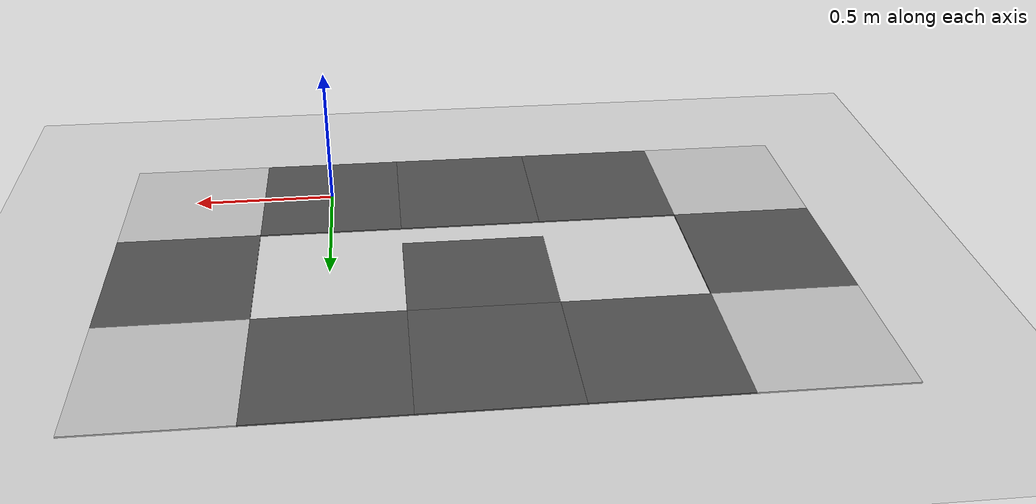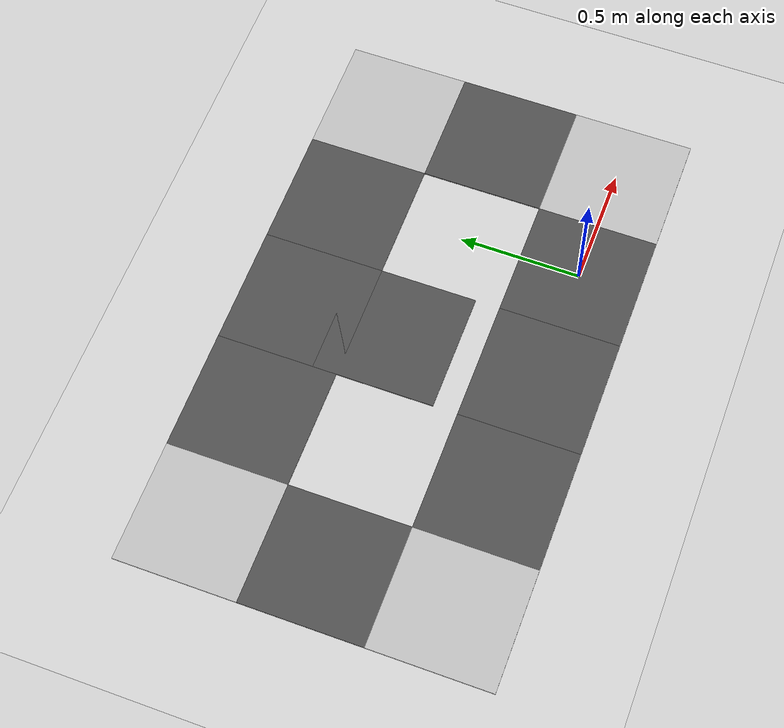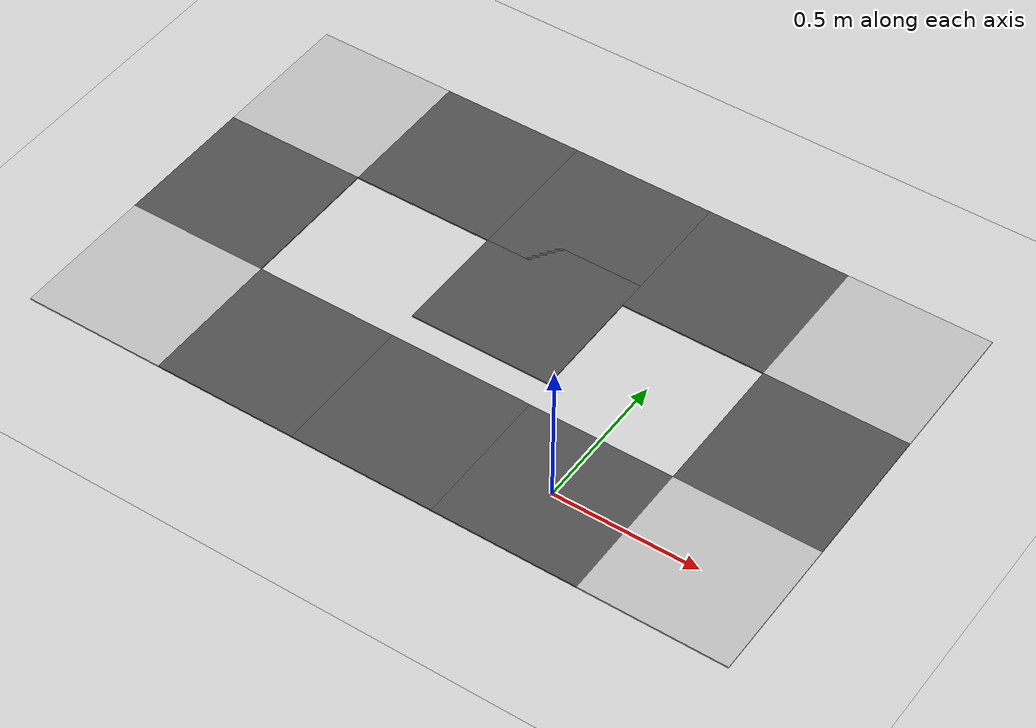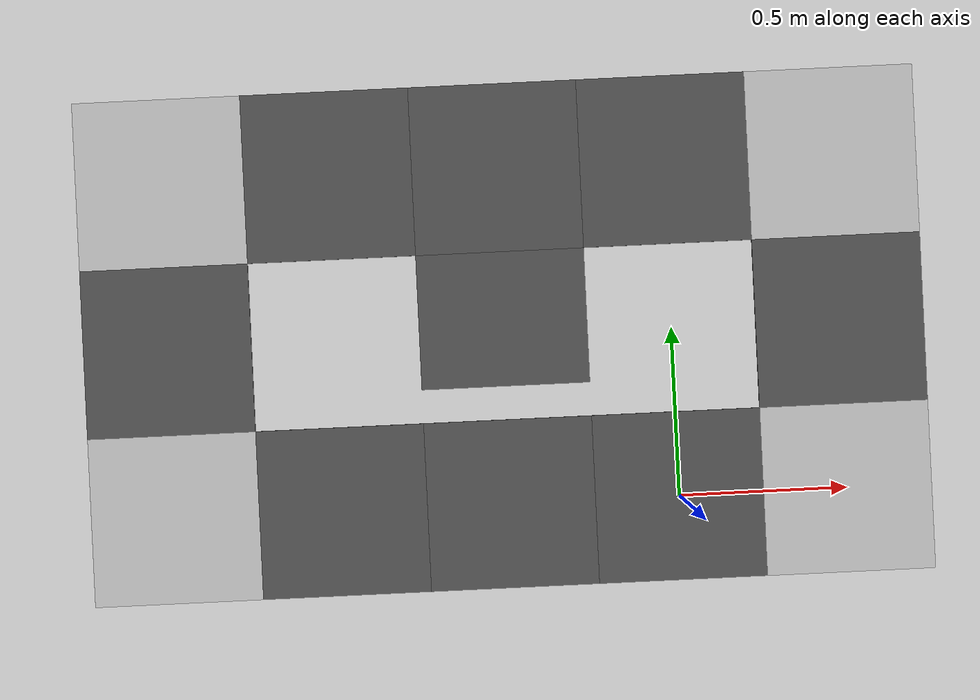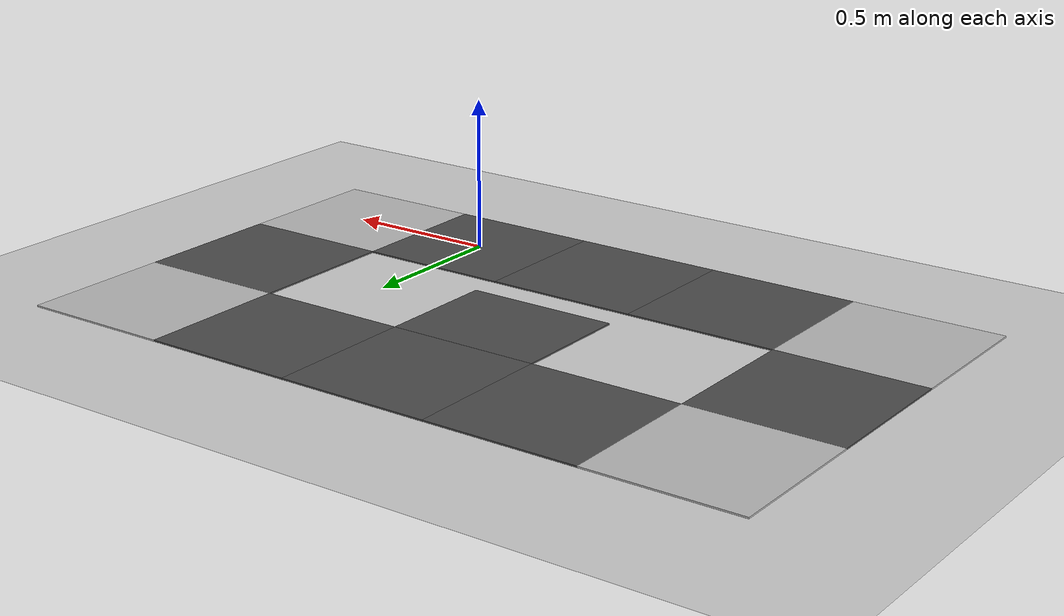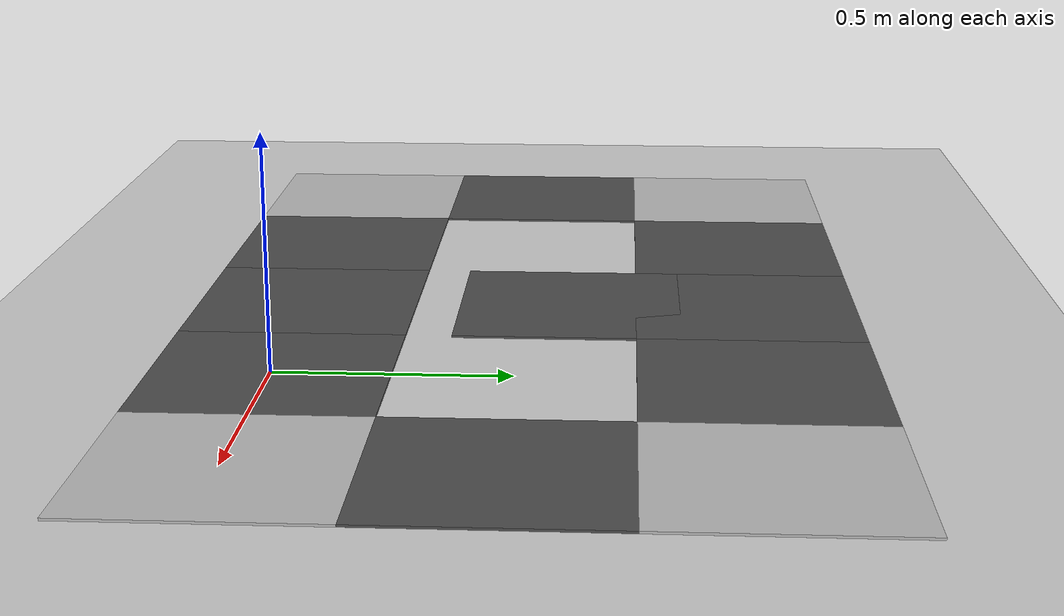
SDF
<sdf version="1.6">
 <world name="default">
  <light name="sun" type="directional">
   <pose>0 0 10 0 -0 0</pose>
   <diffuse>0.8 0.8 0.8 1</diffuse>
   <specular>0.2 0.2 0.2 1</specular>
   <attenuation>
    <range>1000</range>
    <constant>0.9</constant>
    <linear>0.01</linear>
    <quadratic>0.001</quadratic>
   </attenuation>
   <direction>-0.5 0.1 -0.9</direction>
  </light>
  <model name="ground_plane">
   <static>1</static>
   <link name="link">
    <collision name="collision">
     <geometry><plane><normal>0 0 1</normal><size>100 100</size></plane></geometry>
     <surface><friction><ode><mu>100</mu><mu2>50</mu2></ode></friction></surface>
    </collision>
    <visual name="visual">
     <cast_shadows>0</cast_shadows>
     <geometry><plane><normal>0 0 1</normal><size>100 100</size></plane></geometry>
     <material>
      <script><uri>file://media/materials/scripts/gazebo.material</uri><name>Gazebo/Grey</name></script>
     </material>
    </visual>
   </link>
  </model>
  <physics name="default_physics" default="0" type="ode">
   <max_step_size>0.001</max_step_size>
   <real_time_factor>1</real_time_factor>
   <real_time_update_rate>1000</real_time_update_rate>
  </physics>
  <scene><ambient>0.4 0.4 0.4 1</ambient><background>0.7 0.7 0.7 1</background><shadows>1</shadows></scene>
  <spherical_coordinates>
   <surface_model>EARTH_WGS84</surface_model>
   <latitude_deg>0</latitude_deg>
   <longitude_deg>0</longitude_deg>
   <elevation>0</elevation>
   <heading_deg>0</heading_deg>
  </spherical_coordinates>
  <light name="user_spot_light_1" type="spot">
   <pose>-11 7 1 0 -0 0</pose>
   <diffuse>0.5 0.5 0.5 1</diffuse>
   <specular>0.1 0.1 0.1 1</specular>
   <direction>0 0 -1</direction>
   <attenuation>
    <range>20</range>
    <constant>0.5</constant>
    <linear>0.01</linear>
    <quadratic>0.001</quadratic>
   </attenuation>
   <cast_shadows>0</cast_shadows>
   <spot><inner_angle>0.6</inner_angle><outer_angle>1</outer_angle><falloff>1</falloff></spot>
  </light>
  <gravity>0 0 -9.8</gravity>
  <magnetic_field>6e-06 2.3e-05 -4.2e-05</magnetic_field>
  <atmosphere type="adiabatic"/>
  <model name="road_plane_3_clone_0">
   <static>1</static>
   <link name="link">
    <collision name="collision"><geometry><box><size>0.5 0.5 0.005</size></box></geometry></collision>
    <visual name="visual">
     <cast_shadows>0</cast_shadows>
     <geometry><box><size>0.5 0.5 0.005</size></box></geometry>
     <material>
      <script>
       <uri>model://road_plane_3/materials/scripts</uri>
       <uri>model://road_plane_3/materials/textures</uri>
       <name>vrc/road3</name>
      </script>
     </material>
    </visual>
   </link>
   <pose>-1 0 0 0 -0 0</pose>
  </model>
  <model name="road_plane_3_clone_1">
   <static>1</static>
   <link name="link">
    <collision name="collision"><geometry><box><size>0.5 0.5 0.005</size></box></geometry></collision>
    <visual name="visual">
     <cast_shadows>0</cast_shadows>
     <geometry><box><size>0.5 0.5 0.005</size></box></geometry>
     <material>
      <script>
       <uri>model://road_plane_3/materials/scripts</uri>
       <uri>model://road_plane_3/materials/textures</uri>
       <name>vrc/road3</name>
      </script>
     </material>
    </visual>
   </link>
   <pose>0.5 0.5 0 0 -0 1.5708</pose>
  </model>
  <model name="road_plane_3_clone">
   <static>1</static>
   <link name="link">
    <collision name="collision"><geometry><box><size>0.5 0.5 0.005</size></box></geometry></collision>
    <visual name="visual">
     <cast_shadows>0</cast_shadows>
     <geometry><box><size>0.5 0.5 0.005</size></box></geometry>
     <material>
      <script>
       <uri>model://road_plane_3/materials/scripts</uri>
       <uri>model://road_plane_3/materials/textures</uri>
       <name>vrc/road3</name>
      </script>
     </material>
    </visual>
   </link>
   <pose>-0.5 0 0 0 -0 0</pose>
  </model>
  <model name="road_diag_clone">
   <static>1</static>
   <link name="link">
    <collision name="collision"><geometry><box><size>0.5 0.5 0.005</size></box></geometry></collision>
    <visual name="visual">
     <cast_shadows>0</cast_shadows>
     <geometry><box><size>0.5 0.5 0.005</size></box></geometry>
     <material>
      <script>
       <uri>model://road_diag/materials/scripts</uri>
       <uri>model://road_diag/materials/textures</uri>
       <name>vrc/diag</name>
      </script>
     </material>
    </visual>
   </link>
   <pose>0.5 1 0 0 -0 1.5708</pose>
  </model>
  <model name="road_plane_3_clone_2">
   <static>1</static>
   <link name="link">
    <collision name="collision"><geometry><box><size>0.5 0.5 0.005</size></box></geometry></collision>
    <visual name="visual">
     <cast_shadows>0</cast_shadows>
     <geometry><box><size>0.5 0.5 0.005</size></box></geometry>
     <material>
      <script>
       <uri>model://road_plane_3/materials/scripts</uri>
       <uri>model://road_plane_3/materials/textures</uri>
       <name>vrc/road3</name>
      </script>
     </material>
    </visual>
   </link>
   <pose>0 1 0 0 -0 0</pose>
  </model>
  <model name="road_plane_3_clone_3">
   <static>1</static>
   <link name="link">
    <collision name="collision"><geometry><box><size>0.5 0.5 0.005</size></box></geometry></collision>
    <visual name="visual">
     <cast_shadows>0</cast_shadows>
     <geometry><box><size>0.5 0.5 0.005</size></box></geometry>
     <material>
      <script>
       <uri>model://road_plane_3/materials/scripts</uri>
       <uri>model://road_plane_3/materials/textures</uri>
       <name>vrc/road3</name>
      </script>
     </material>
    </visual>
   </link>
   <pose>-0.5 1 0 0 -0 0</pose>
  </model>
  <model name="road_plane_3_clone_4">
   <static>1</static>
   <link name="link">
    <collision name="collision"><geometry><box><size>0.5 0.5 0.005</size></box></geometry></collision>
    <visual name="visual">
     <cast_shadows>0</cast_shadows>
     <geometry><box><size>0.5 0.5 0.005</size></box></geometry>
     <material>
      <script>
       <uri>model://road_plane_3/materials/scripts</uri>
       <uri>model://road_plane_3/materials/textures</uri>
       <name>vrc/road3</name>
      </script>
     </material>
    </visual>
   </link>
   <pose>-1 1 0 0 -0 0</pose>
  </model>
  <model name="road_plane_3_clone_1_clone">
   <static>1</static>
   <link name="link">
    <collision name="collision"><geometry><box><size>0.5 0.5 0.005</size></box></geometry></collision>
    <visual name="visual">
     <cast_shadows>0</cast_shadows>
     <geometry><box><size>0.5 0.5 0.005</size></box></geometry>
     <material>
      <script>
       <uri>model://road_plane_3/materials/scripts</uri>
       <uri>model://road_plane_3/materials/textures</uri>
       <name>vrc/road3</name>
      </script>
     </material>
    </visual>
   </link>
   <pose>-1.5 0.5 0 0 -0 1.5708</pose>
  </model>
  <model name="road_diag_clone_0">
   <static>1</static>
   <link name="link">
    <collision name="collision"><geometry><box><size>0.5 0.5 0.005</size></box></geometry></collision>
    <visual name="visual">
     <cast_shadows>0</cast_shadows>
     <geometry><box><size>0.5 0.5 0.005</size></box></geometry>
     <material>
      <script>
       <uri>model://road_diag/materials/scripts</uri>
       <uri>model://road_diag/materials/textures</uri>
       <name>vrc/diag</name>
      </script>
     </material>
    </visual>
   </link>
   <pose>-1.5 1 0 0 0 -3.14159</pose>
  </model>
  <model name="road_diag_clone_0_clone">
   <static>1</static>
   <link name="link">
    <collision name="collision"><geometry><box><size>0.5 0.5 0.005</size></box></geometry></collision>
    <visual name="visual">
     <cast_shadows>0</cast_shadows>
     <geometry><box><size>0.5 0.5 0.005</size></box></geometry>
     <material>
      <script>
       <uri>model://road_diag/materials/scripts</uri>
       <uri>model://road_diag/materials/textures</uri>
       <name>vrc/diag</name>
      </script>
     </material>
    </visual>
   </link>
   <pose>-1.5 0 0 0 0 -1.5708</pose>
  </model>
  <model name="road_plane_3_clone_1_clone_clone">
   <static>1</static>
   <link name="link">
    <collision name="collision"><geometry><box><size>0.5 0.5 0.005</size></box></geometry></collision>
    <visual name="visual">
     <cast_shadows>0</cast_shadows>
     <geometry><box><size>0.5 0.5 0.005</size></box></geometry>
     <material>
      <script>
       <uri>model://road_plane_3/materials/scripts</uri>
       <uri>model://road_plane_3/materials/textures</uri>
       <name>vrc/road3</name>
      </script>
     </material>
    </visual>
   </link>
   <pose>-0.5 0.6 0 0 -0 1.5708</pose>
  </model>
  <model name="road_plane_3_clone_clone">
   <static>1</static>
   <link name="link">
    <collision name="collision"><geometry><box><size>0.5 0.5 0.005</size></box></geometry></collision>
    <visual name="visual">
     <cast_shadows>0</cast_shadows>
     <geometry><box><size>0.5 0.5 0.005</size></box></geometry>
     <material>
      <script>
       <uri>model://road_plane_3/materials/scripts</uri>
       <uri>model://road_plane_3/materials/textures</uri>
       <name>vrc/road3</name>
      </script>
     </material>
    </visual>
   </link>
  </model>
  <model name="road_diag_clone_clone">
   <static>1</static>
   <link name="link">
    <collision name="collision"><geometry><box><size>0.5 0.5 0.005</size></box></geometry></collision>
    <visual name="visual">
     <cast_shadows>0</cast_shadows>
     <geometry><box><size>0.5 0.5 0.005</size></box></geometry>
     <material>
      <script>
       <uri>model://road_diag/materials/scripts</uri>
       <uri>model://road_diag/materials/textures</uri>
       <name>vrc/diag</name>
      </script>
     </material>
    </visual>
   </link>
   <pose>0.5 0 0 0 0 0</pose>
  </model>
 </world>
</sdf>
